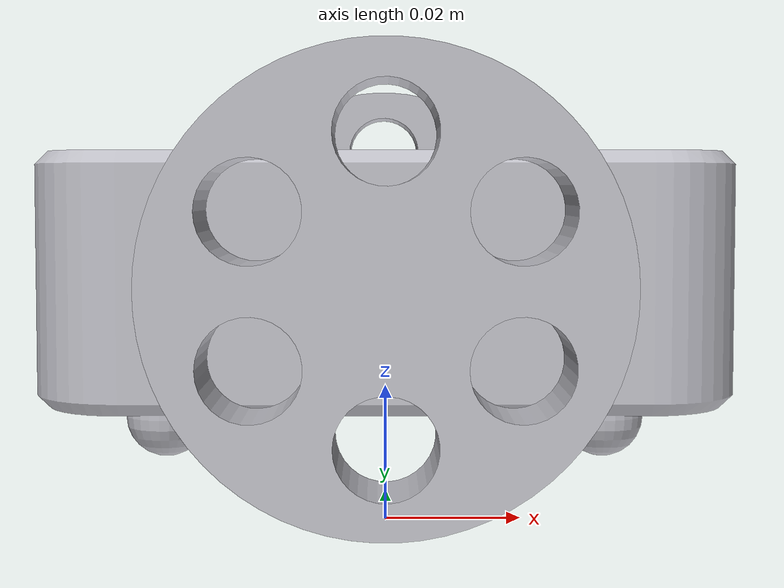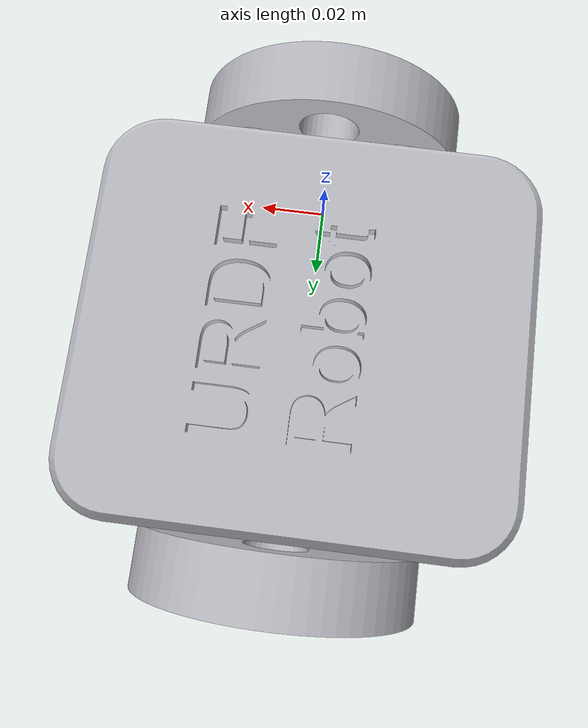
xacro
<?xml version="1.0" ?>
<robot name="test1" xmlns:xacro="http://www.ros.org/wiki/xacro">

<xacro:include filename="$(find test1_description)/urdf/materials.xacro" />
<xacro:include filename="$(find test1_description)/urdf/test1.trans" />
<xacro:include filename="$(find test1_description)/urdf/test1.gazebo" />
<link name="base_link">
  <inertial>
    <origin rpy="0 0 0" xyz="-1.938746720440143e-05 0.049993889948677095 0.03464829620552879"/>
    <mass value="3.4039266579014527"/>
    <inertia ixx="0.003191" ixy="-0.0" ixz="1e-06" iyy="0.003822" iyz="0.0" izz="0.006077"/>
  </inertial>
  <visual>
    <origin rpy="0 0 0" xyz="0 0 0"/>
    <geometry>
      <mesh filename="package://test1_description/meshes/base_link.stl" scale="0.001 0.001 0.001"/>
    </geometry>
    <material name="silver"/>
  </visual>
  <collision>
    <origin rpy="0 0 0" xyz="0 0 0"/>
    <geometry>
      <mesh filename="package://test1_description/meshes/base_link.stl" scale="0.001 0.001 0.001"/>
    </geometry>
  </collision>
</link>

<link name="left_wheel_1">
  <inertial>
    <origin rpy="0 0 0" xyz="-2.9825919511949906e-13 0.007499999999999993 -1.3877787807814457e-17"/>
    <mass value="0.3283062497771709"/>
    <inertia ixx="0.000113" ixy="-0.0" ixz="-0.0" iyy="0.000214" iyz="0.0" izz="0.000113"/>
  </inertial>
  <visual>
    <origin rpy="0 0 0" xyz="-0.0 -0.1 -0.035"/>
    <geometry>
      <mesh filename="package://test1_description/meshes/left_wheel_1.stl" scale="0.001 0.001 0.001"/>
    </geometry>
    <material name="silver"/>
  </visual>
  <collision>
    <origin rpy="0 0 0" xyz="-0.0 -0.1 -0.035"/>
    <geometry>
      <mesh filename="package://test1_description/meshes/left_wheel_1.stl" scale="0.001 0.001 0.001"/>
    </geometry>
  </collision>
</link>

<link name="right_wheel_1">
  <inertial>
    <origin rpy="0 0 0" xyz="-2.9821478619851404e-13 -0.007500000000000003 6.938893903907228e-18"/>
    <mass value="0.3283062497771708"/>
    <inertia ixx="0.000113" ixy="0.0" ixz="0.0" iyy="0.000214" iyz="0.0" izz="0.000113"/>
  </inertial>
  <visual>
    <origin rpy="0 0 0" xyz="-0.0 -0.0 -0.035"/>
    <geometry>
      <mesh filename="package://test1_description/meshes/right_wheel_1.stl" scale="0.001 0.001 0.001"/>
    </geometry>
    <material name="silver"/>
  </visual>
  <collision>
    <origin rpy="0 0 0" xyz="-0.0 -0.0 -0.035"/>
    <geometry>
      <mesh filename="package://test1_description/meshes/right_wheel_1.stl" scale="0.001 0.001 0.001"/>
    </geometry>
  </collision>
</link>

<joint name="Rev3" type="continuous">
  <origin rpy="0 0 0" xyz="0.0 0.1 0.035"/>
  <parent link="base_link"/>
  <child link="left_wheel_1"/>
  <axis xyz="0.0 1.0 0.0"/>
</joint>

<joint name="Rev4" type="continuous">
  <origin rpy="0 0 0" xyz="0.0 0.0 0.035"/>
  <parent link="base_link"/>
  <child link="right_wheel_1"/>
  <axis xyz="0.0 -1.0 0.0"/>
</joint>

</robot>

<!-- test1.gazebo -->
<robot name="test1" xmlns:xacro="http://www.ros.org/wiki/xacro" >

<xacro:property name="body_color" value="Gazebo/Silver" />

<gazebo>
  <plugin filename="libgazebo_ros_control.so" name="control"/>
</gazebo>
<gazebo reference="base_link">
  <material>${body_color}</material>
  <mu1>0.2</mu1>
  <mu2>0.2</mu2>
  <selfCollide>true</selfCollide>
  <gravity>true</gravity>
</gazebo>

<gazebo reference="left_wheel_1">
  <material>${body_color}</material>
  <mu1>0.2</mu1>
  <mu2>0.2</mu2>
  <selfCollide>true</selfCollide>
</gazebo>

<gazebo reference="right_wheel_1">
  <material>${body_color}</material>
  <mu1>0.2</mu1>
  <mu2>0.2</mu2>
  <selfCollide>true</selfCollide>
</gazebo>

</robot>
